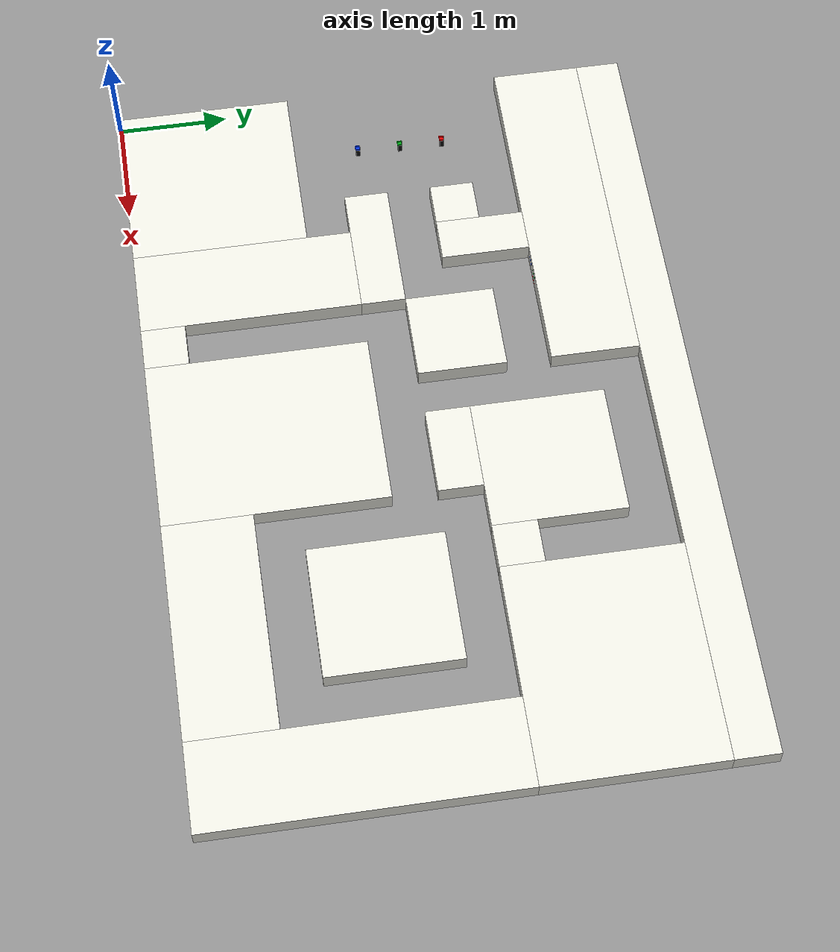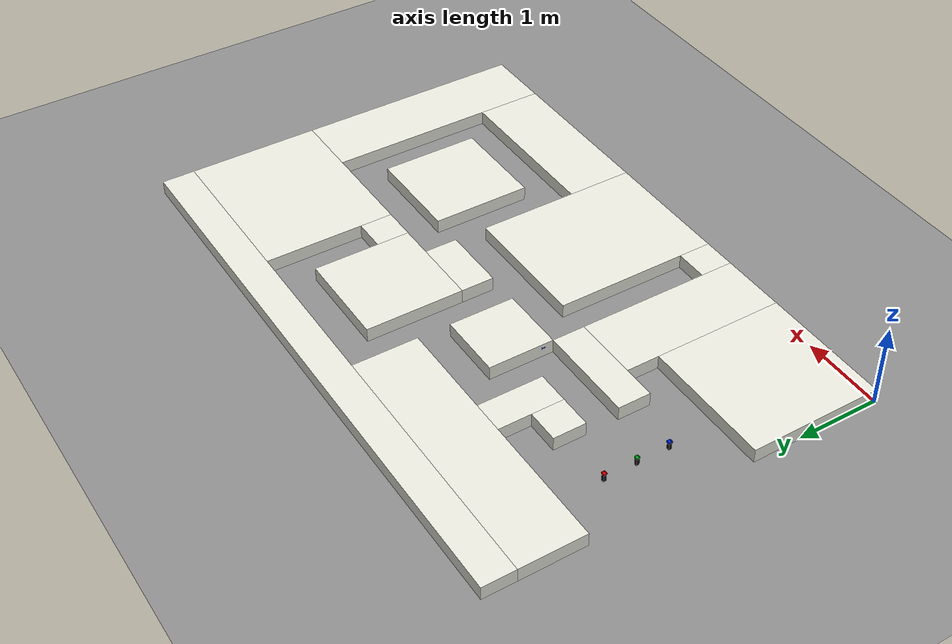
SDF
<sdf version="1.9">
 <world name="ros2_world">
  <model name="ground_plane">
   <static>true</static>
   <link name="link">
    <collision name="collision">
     <geometry><plane><normal>0 0 1</normal><size>30 30</size></plane></geometry>
    </collision>
    <visual name="visual">
     <geometry><plane><normal>0 0 1</normal><size>30 30</size></plane></geometry>
     <material><ambient>0.55 0.55 0.55 1</ambient><diffuse>0.55 0.55 0.55 1</diffuse></material>
    </visual>
   </link>
  </model>
  <model name="paredes">
   <static>true</static>
   <link name="bloque_0">
    <pose>3.6 4.6 0.085 0 0 0</pose>
    <collision name="colision"><geometry><box><size>7.2 0.4 0.17</size></box></geometry></collision>
    <visual name="visual">
     <geometry><box><size>7.2 0.4 0.17</size></box></geometry>
     <material><ambient>0.9 0.9 0.86 1</ambient><diffuse>0.9 0.9 0.86 1</diffuse></material>
    </visual>
   </link>
   <link name="bloque_1">
    <pose>1.6 4 0.085 0 0 0</pose>
    <collision name="colision"><geometry><box><size>3.2 0.8 0.17</size></box></geometry></collision>
    <visual name="visual">
     <geometry><box><size>3.2 0.8 0.17</size></box></geometry>
     <material><ambient>0.9 0.9 0.86 1</ambient><diffuse>0.9 0.9 0.86 1</diffuse></material>
    </visual>
   </link>
   <link name="bloque_2">
    <pose>6.2 3.6 0.085 0 0 0</pose>
    <collision name="colision"><geometry><box><size>2 1.6 0.17</size></box></geometry></collision>
    <visual name="visual">
     <geometry><box><size>2 1.6 0.17</size></box></geometry>
     <material><ambient>0.9 0.9 0.86 1</ambient><diffuse>0.9 0.9 0.86 1</diffuse></material>
    </visual>
   </link>
   <link name="bloque_3">
    <pose>4.2 3.4 0.085 0 0 0</pose>
    <collision name="colision"><geometry><box><size>1.2 1.2 0.17</size></box></geometry></collision>
    <visual name="visual">
     <geometry><box><size>1.2 1.2 0.17</size></box></geometry>
     <material><ambient>0.9 0.9 0.86 1</ambient><diffuse>0.9 0.9 0.86 1</diffuse></material>
    </visual>
   </link>
   <link name="bloque_4">
    <pose>1.8 3.2 0.085 0 0 0</pose>
    <collision name="colision"><geometry><box><size>0.4 0.8 0.17</size></box></geometry></collision>
    <visual name="visual">
     <geometry><box><size>0.4 0.8 0.17</size></box></geometry>
     <material><ambient>0.9 0.9 0.86 1</ambient><diffuse>0.9 0.9 0.86 1</diffuse></material>
    </visual>
   </link>
   <link name="bloque_5">
    <pose>1.4 3 0.085 0 0 0</pose>
    <collision name="colision"><geometry><box><size>0.4 0.4 0.17</size></box></geometry></collision>
    <visual name="visual">
     <geometry><box><size>0.4 0.4 0.17</size></box></geometry>
     <material><ambient>0.9 0.9 0.86 1</ambient><diffuse>0.9 0.9 0.86 1</diffuse></material>
    </visual>
   </link>
   <link name="bloque_6">
    <pose>2.8 2.8 0.085 0 0 0</pose>
    <collision name="colision"><geometry><box><size>0.8 0.8 0.17</size></box></geometry></collision>
    <visual name="visual">
     <geometry><box><size>0.8 0.8 0.17</size></box></geometry>
     <material><ambient>0.9 0.9 0.86 1</ambient><diffuse>0.9 0.9 0.86 1</diffuse></material>
    </visual>
   </link>
   <link name="bloque_7">
    <pose>5 3 0.085 0 0 0</pose>
    <collision name="colision"><geometry><box><size>0.4 0.4 0.17</size></box></geometry></collision>
    <visual name="visual">
     <geometry><box><size>0.4 0.4 0.17</size></box></geometry>
     <material><ambient>0.9 0.9 0.86 1</ambient><diffuse>0.9 0.9 0.86 1</diffuse></material>
    </visual>
   </link>
   <link name="bloque_8">
    <pose>4 2.6 0.085 0 0 0</pose>
    <collision name="colision"><geometry><box><size>0.8 0.4 0.17</size></box></geometry></collision>
    <visual name="visual">
     <geometry><box><size>0.8 0.4 0.17</size></box></geometry>
     <material><ambient>0.9 0.9 0.86 1</ambient><diffuse>0.9 0.9 0.86 1</diffuse></material>
    </visual>
   </link>
   <link name="bloque_9">
    <pose>6.8 1.4 0.085 0 0 0</pose>
    <collision name="colision"><geometry><box><size>0.8 2.8 0.17</size></box></geometry></collision>
    <visual name="visual">
     <geometry><box><size>0.8 2.8 0.17</size></box></geometry>
     <material><ambient>0.9 0.9 0.86 1</ambient><diffuse>0.9 0.9 0.86 1</diffuse></material>
    </visual>
   </link>
   <link name="bloque_10">
    <pose>1.8 2.2 0.085 0 0 0</pose>
    <collision name="colision"><geometry><box><size>1.2 0.4 0.17</size></box></geometry></collision>
    <visual name="visual">
     <geometry><box><size>1.2 0.4 0.17</size></box></geometry>
     <material><ambient>0.9 0.9 0.86 1</ambient><diffuse>0.9 0.9 0.86 1</diffuse></material>
    </visual>
   </link>
   <link name="bloque_11">
    <pose>5.4 1.8 0.085 0 0 0</pose>
    <collision name="colision"><geometry><box><size>1.2 1.2 0.17</size></box></geometry></collision>
    <visual name="visual">
     <geometry><box><size>1.2 1.2 0.17</size></box></geometry>
     <material><ambient>0.9 0.9 0.86 1</ambient><diffuse>0.9 0.9 0.86 1</diffuse></material>
    </visual>
   </link>
   <link name="bloque_12">
    <pose>2 1 0.085 0 0 0</pose>
    <collision name="colision"><geometry><box><size>0.8 2 0.17</size></box></geometry></collision>
    <visual name="visual">
     <geometry><box><size>0.8 2 0.17</size></box></geometry>
     <material><ambient>0.9 0.9 0.86 1</ambient><diffuse>0.9 0.9 0.86 1</diffuse></material>
    </visual>
   </link>
   <link name="bloque_13">
    <pose>3.6 1 0.085 0 0 0</pose>
    <collision name="colision"><geometry><box><size>1.6 2 0.17</size></box></geometry></collision>
    <visual name="visual">
     <geometry><box><size>1.6 2 0.17</size></box></geometry>
     <material><ambient>0.9 0.9 0.86 1</ambient><diffuse>0.9 0.9 0.86 1</diffuse></material>
    </visual>
   </link>
   <link name="bloque_14">
    <pose>0.8 0.8 0.085 0 0 0</pose>
    <collision name="colision"><geometry><box><size>1.6 1.6 0.17</size></box></geometry></collision>
    <visual name="visual">
     <geometry><box><size>1.6 1.6 0.17</size></box></geometry>
     <material><ambient>0.9 0.9 0.86 1</ambient><diffuse>0.9 0.9 0.86 1</diffuse></material>
    </visual>
   </link>
   <link name="bloque_15">
    <pose>5.4 0.4 0.085 0 0 0</pose>
    <collision name="colision"><geometry><box><size>2 0.8 0.17</size></box></geometry></collision>
    <visual name="visual">
     <geometry><box><size>2 0.8 0.17</size></box></geometry>
     <material><ambient>0.9 0.9 0.86 1</ambient><diffuse>0.9 0.9 0.86 1</diffuse></material>
    </visual>
   </link>
   <link name="bloque_16">
    <pose>2.6 0.2 0.085 0 0 0</pose>
    <collision name="colision"><geometry><box><size>0.4 0.4 0.17</size></box></geometry></collision>
    <visual name="visual">
     <geometry><box><size>0.4 0.4 0.17</size></box></geometry>
     <material><ambient>0.9 0.9 0.86 1</ambient><diffuse>0.9 0.9 0.86 1</diffuse></material>
    </visual>
   </link>
  </model>
  <model name="flechas">
   <static>true</static>
   <link name="flecha_2">
    <pose>2.12 3.59875 0.115 0 0 0</pose>
    <visual name="p0">
     <pose>-0.007 0 0 0 0 0</pose>
     <geometry><box><size>0.085 0.0015 0.01</size></box></geometry>
     <material><ambient>0 0.2 1 1</ambient><diffuse>0 0.2 1 1</diffuse></material>
    </visual>
    <visual name="p1">
     <pose>0.03578 0 0 0 0 0</pose>
     <geometry><box><size>0.00056 0.0015 0.029</size></box></geometry>
     <material><ambient>0 0.2 1 1</ambient><diffuse>0 0.2 1 1</diffuse></material>
    </visual>
    <visual name="p2">
     <pose>0.03634 0 0 0 0 0</pose>
     <geometry><box><size>0.00056 0.0015 0.02784</size></box></geometry>
     <material><ambient>0 0.2 1 1</ambient><diffuse>0 0.2 1 1</diffuse></material>
    </visual>
    <visual name="p3">
     <pose>0.0369 0 0 0 0 0</pose>
     <geometry><box><size>0.00056 0.0015 0.02668</size></box></geometry>
     <material><ambient>0 0.2 1 1</ambient><diffuse>0 0.2 1 1</diffuse></material>
    </visual>
    <visual name="p4">
     <pose>0.03746 0 0 0 0 0</pose>
     <geometry><box><size>0.00056 0.0015 0.02552</size></box></geometry>
     <material><ambient>0 0.2 1 1</ambient><diffuse>0 0.2 1 1</diffuse></material>
    </visual>
    <visual name="p5">
     <pose>0.03802 0 0 0 0 0</pose>
     <geometry><box><size>0.00056 0.0015 0.02436</size></box></geometry>
     <material><ambient>0 0.2 1 1</ambient><diffuse>0 0.2 1 1</diffuse></material>
    </visual>
    <visual name="p6">
     <pose>0.03858 0 0 0 0 0</pose>
     <geometry><box><size>0.00056 0.0015 0.0232</size></box></geometry>
     <material><ambient>0 0.2 1 1</ambient><diffuse>0 0.2 1 1</diffuse></material>
    </visual>
    <visual name="p7">
     <pose>0.03914 0 0 0 0 0</pose>
     <geometry><box><size>0.00056 0.0015 0.02204</size></box></geometry>
     <material><ambient>0 0.2 1 1</ambient><diffuse>0 0.2 1 1</diffuse></material>
    </visual>
    <visual name="p8">
     <pose>0.0397 0 0 0 0 0</pose>
     <geometry><box><size>0.00056 0.0015 0.02088</size></box></geometry>
     <material><ambient>0 0.2 1 1</ambient><diffuse>0 0.2 1 1</diffuse></material>
    </visual>
    <visual name="p9">
     <pose>0.04026 0 0 0 0 0</pose>
     <geometry><box><size>0.00056 0.0015 0.01972</size></box></geometry>
     <material><ambient>0 0.2 1 1</ambient><diffuse>0 0.2 1 1</diffuse></material>
    </visual>
    <visual name="p10">
     <pose>0.04082 0 0 0 0 0</pose>
     <geometry><box><size>0.00056 0.0015 0.01856</size></box></geometry>
     <material><ambient>0 0.2 1 1</ambient><diffuse>0 0.2 1 1</diffuse></material>
    </visual>
    <visual name="p11">
     <pose>0.04138 0 0 0 0 0</pose>
     <geometry><box><size>0.00056 0.0015 0.0174</size></box></geometry>
     <material><ambient>0 0.2 1 1</ambient><diffuse>0 0.2 1 1</diffuse></material>
    </visual>
    <visual name="p12">
     <pose>0.04194 0 0 0 0 0</pose>
     <geometry><box><size>0.00056 0.0015 0.01624</size></box></geometry>
     <material><ambient>0 0.2 1 1</ambient><diffuse>0 0.2 1 1</diffuse></material>
    </visual>
    <visual name="p13">
     <pose>0.0425 0 0 0 0 0</pose>
     <geometry><box><size>0.00056 0.0015 0.01508</size></box></geometry>
     <material><ambient>0 0.2 1 1</ambient><diffuse>0 0.2 1 1</diffuse></material>
    </visual>
    <visual name="p14">
     <pose>0.04306 0 0 0 0 0</pose>
     <geometry><box><size>0.00056 0.0015 0.01392</size></box></geometry>
     <material><ambient>0 0.2 1 1</ambient><diffuse>0 0.2 1 1</diffuse></material>
    </visual>
    <visual name="p15">
     <pose>0.04362 0 0 0 0 0</pose>
     <geometry><box><size>0.00056 0.0015 0.01276</size></box></geometry>
     <material><ambient>0 0.2 1 1</ambient><diffuse>0 0.2 1 1</diffuse></material>
    </visual>
    <visual name="p16">
     <pose>0.04418 0 0 0 0 0</pose>
     <geometry><box><size>0.00056 0.0015 0.0116</size></box></geometry>
     <material><ambient>0 0.2 1 1</ambient><diffuse>0 0.2 1 1</diffuse></material>
    </visual>
    <visual name="p17">
     <pose>0.04474 0 0 0 0 0</pose>
     <geometry><box><size>0.00056 0.0015 0.01044</size></box></geometry>
     <material><ambient>0 0.2 1 1</ambient><diffuse>0 0.2 1 1</diffuse></material>
    </visual>
    <visual name="p18">
     <pose>0.0453 0 0 0 0 0</pose>
     <geometry><box><size>0.00056 0.0015 0.00928</size></box></geometry>
     <material><ambient>0 0.2 1 1</ambient><diffuse>0 0.2 1 1</diffuse></material>
    </visual>
    <visual name="p19">
     <pose>0.04586 0 0 0 0 0</pose>
     <geometry><box><size>0.00056 0.0015 0.00812</size></box></geometry>
     <material><ambient>0 0.2 1 1</ambient><diffuse>0 0.2 1 1</diffuse></material>
    </visual>
    <visual name="p20">
     <pose>0.04642 0 0 0 0 0</pose>
     <geometry><box><size>0.00056 0.0015 0.00696</size></box></geometry>
     <material><ambient>0 0.2 1 1</ambient><diffuse>0 0.2 1 1</diffuse></material>
    </visual>
    <visual name="p21">
     <pose>0.04698 0 0 0 0 0</pose>
     <geometry><box><size>0.00056 0.0015 0.0058</size></box></geometry>
     <material><ambient>0 0.2 1 1</ambient><diffuse>0 0.2 1 1</diffuse></material>
    </visual>
    <visual name="p22">
     <pose>0.04754 0 0 0 0 0</pose>
     <geometry><box><size>0.00056 0.0015 0.00464</size></box></geometry>
     <material><ambient>0 0.2 1 1</ambient><diffuse>0 0.2 1 1</diffuse></material>
    </visual>
    <visual name="p23">
     <pose>0.0481 0 0 0 0 0</pose>
     <geometry><box><size>0.00056 0.0015 0.00348</size></box></geometry>
     <material><ambient>0 0.2 1 1</ambient><diffuse>0 0.2 1 1</diffuse></material>
    </visual>
    <visual name="p24">
     <pose>0.04866 0 0 0 0 0</pose>
     <geometry><box><size>0.00056 0.0015 0.00232</size></box></geometry>
     <material><ambient>0 0.2 1 1</ambient><diffuse>0 0.2 1 1</diffuse></material>
    </visual>
    <visual name="p25">
     <pose>0.04922 0 0 0 0 0</pose>
     <geometry><box><size>0.00056 0.0015 0.00116</size></box></geometry>
     <material><ambient>0 0.2 1 1</ambient><diffuse>0 0.2 1 1</diffuse></material>
    </visual>
   </link>
   <link name="flecha_3">
    <pose>2.28 3.59875 0.125 0 0 0</pose>
    <visual name="p0">
     <pose>-0.007 0 0 0 0 0</pose>
     <geometry><box><size>0.085 0.0015 0.01</size></box></geometry>
     <material><ambient>0 0.7 0.1 1</ambient><diffuse>0 0.7 0.1 1</diffuse></material>
    </visual>
    <visual name="p1">
     <pose>0.03578 0 0 0 0 0</pose>
     <geometry><box><size>0.00056 0.0015 0.029</size></box></geometry>
     <material><ambient>0 0.7 0.1 1</ambient><diffuse>0 0.7 0.1 1</diffuse></material>
    </visual>
    <visual name="p2">
     <pose>0.03634 0 0 0 0 0</pose>
     <geometry><box><size>0.00056 0.0015 0.02784</size></box></geometry>
     <material><ambient>0 0.7 0.1 1</ambient><diffuse>0 0.7 0.1 1</diffuse></material>
    </visual>
    <visual name="p3">
     <pose>0.0369 0 0 0 0 0</pose>
     <geometry><box><size>0.00056 0.0015 0.02668</size></box></geometry>
     <material><ambient>0 0.7 0.1 1</ambient><diffuse>0 0.7 0.1 1</diffuse></material>
    </visual>
    <visual name="p4">
     <pose>0.03746 0 0 0 0 0</pose>
     <geometry><box><size>0.00056 0.0015 0.02552</size></box></geometry>
     <material><ambient>0 0.7 0.1 1</ambient><diffuse>0 0.7 0.1 1</diffuse></material>
    </visual>
    <visual name="p5">
     <pose>0.03802 0 0 0 0 0</pose>
     <geometry><box><size>0.00056 0.0015 0.02436</size></box></geometry>
     <material><ambient>0 0.7 0.1 1</ambient><diffuse>0 0.7 0.1 1</diffuse></material>
    </visual>
    <visual name="p6">
     <pose>0.03858 0 0 0 0 0</pose>
     <geometry><box><size>0.00056 0.0015 0.0232</size></box></geometry>
     <material><ambient>0 0.7 0.1 1</ambient><diffuse>0 0.7 0.1 1</diffuse></material>
    </visual>
    <visual name="p7">
     <pose>0.03914 0 0 0 0 0</pose>
     <geometry><box><size>0.00056 0.0015 0.02204</size></box></geometry>
     <material><ambient>0 0.7 0.1 1</ambient><diffuse>0 0.7 0.1 1</diffuse></material>
    </visual>
    <visual name="p8">
     <pose>0.0397 0 0 0 0 0</pose>
     <geometry><box><size>0.00056 0.0015 0.02088</size></box></geometry>
     <material><ambient>0 0.7 0.1 1</ambient><diffuse>0 0.7 0.1 1</diffuse></material>
    </visual>
    <visual name="p9">
     <pose>0.04026 0 0 0 0 0</pose>
     <geometry><box><size>0.00056 0.0015 0.01972</size></box></geometry>
     <material><ambient>0 0.7 0.1 1</ambient><diffuse>0 0.7 0.1 1</diffuse></material>
    </visual>
    <visual name="p10">
     <pose>0.04082 0 0 0 0 0</pose>
     <geometry><box><size>0.00056 0.0015 0.01856</size></box></geometry>
     <material><ambient>0 0.7 0.1 1</ambient><diffuse>0 0.7 0.1 1</diffuse></material>
    </visual>
    <visual name="p11">
     <pose>0.04138 0 0 0 0 0</pose>
     <geometry><box><size>0.00056 0.0015 0.0174</size></box></geometry>
     <material><ambient>0 0.7 0.1 1</ambient><diffuse>0 0.7 0.1 1</diffuse></material>
    </visual>
    <visual name="p12">
     <pose>0.04194 0 0 0 0 0</pose>
     <geometry><box><size>0.00056 0.0015 0.01624</size></box></geometry>
     <material><ambient>0 0.7 0.1 1</ambient><diffuse>0 0.7 0.1 1</diffuse></material>
    </visual>
    <visual name="p13">
     <pose>0.0425 0 0 0 0 0</pose>
     <geometry><box><size>0.00056 0.0015 0.01508</size></box></geometry>
     <material><ambient>0 0.7 0.1 1</ambient><diffuse>0 0.7 0.1 1</diffuse></material>
    </visual>
    <visual name="p14">
     <pose>0.04306 0 0 0 0 0</pose>
     <geometry><box><size>0.00056 0.0015 0.01392</size></box></geometry>
     <material><ambient>0 0.7 0.1 1</ambient><diffuse>0 0.7 0.1 1</diffuse></material>
    </visual>
    <visual name="p15">
     <pose>0.04362 0 0 0 0 0</pose>
     <geometry><box><size>0.00056 0.0015 0.01276</size></box></geometry>
     <material><ambient>0 0.7 0.1 1</ambient><diffuse>0 0.7 0.1 1</diffuse></material>
    </visual>
    <visual name="p16">
     <pose>0.04418 0 0 0 0 0</pose>
     <geometry><box><size>0.00056 0.0015 0.0116</size></box></geometry>
     <material><ambient>0 0.7 0.1 1</ambient><diffuse>0 0.7 0.1 1</diffuse></material>
    </visual>
    <visual name="p17">
     <pose>0.04474 0 0 0 0 0</pose>
     <geometry><box><size>0.00056 0.0015 0.01044</size></box></geometry>
     <material><ambient>0 0.7 0.1 1</ambient><diffuse>0 0.7 0.1 1</diffuse></material>
    </visual>
    <visual name="p18">
     <pose>0.0453 0 0 0 0 0</pose>
     <geometry><box><size>0.00056 0.0015 0.00928</size></box></geometry>
     <material><ambient>0 0.7 0.1 1</ambient><diffuse>0 0.7 0.1 1</diffuse></material>
    </visual>
    <visual name="p19">
     <pose>0.04586 0 0 0 0 0</pose>
     <geometry><box><size>0.00056 0.0015 0.00812</size></box></geometry>
     <material><ambient>0 0.7 0.1 1</ambient><diffuse>0 0.7 0.1 1</diffuse></material>
    </visual>
    <visual name="p20">
     <pose>0.04642 0 0 0 0 0</pose>
     <geometry><box><size>0.00056 0.0015 0.00696</size></box></geometry>
     <material><ambient>0 0.7 0.1 1</ambient><diffuse>0 0.7 0.1 1</diffuse></material>
    </visual>
    <visual name="p21">
     <pose>0.04698 0 0 0 0 0</pose>
     <geometry><box><size>0.00056 0.0015 0.0058</size></box></geometry>
     <material><ambient>0 0.7 0.1 1</ambient><diffuse>0 0.7 0.1 1</diffuse></material>
    </visual>
    <visual name="p22">
     <pose>0.04754 0 0 0 0 0</pose>
     <geometry><box><size>0.00056 0.0015 0.00464</size></box></geometry>
     <material><ambient>0 0.7 0.1 1</ambient><diffuse>0 0.7 0.1 1</diffuse></material>
    </visual>
    <visual name="p23">
     <pose>0.0481 0 0 0 0 0</pose>
     <geometry><box><size>0.00056 0.0015 0.00348</size></box></geometry>
     <material><ambient>0 0.7 0.1 1</ambient><diffuse>0 0.7 0.1 1</diffuse></material>
    </visual>
    <visual name="p24">
     <pose>0.04866 0 0 0 0 0</pose>
     <geometry><box><size>0.00056 0.0015 0.00232</size></box></geometry>
     <material><ambient>0 0.7 0.1 1</ambient><diffuse>0 0.7 0.1 1</diffuse></material>
    </visual>
    <visual name="p25">
     <pose>0.04922 0 0 0 0 0</pose>
     <geometry><box><size>0.00056 0.0015 0.00116</size></box></geometry>
     <material><ambient>0 0.7 0.1 1</ambient><diffuse>0 0.7 0.1 1</diffuse></material>
    </visual>
   </link>
   <link name="flecha_4">
    <pose>2.28 3.59875 0.045 0 0 0</pose>
    <visual name="p0">
     <pose>-0.007 0 0 0 0 0</pose>
     <geometry><box><size>0.085 0.0015 0.01</size></box></geometry>
     <material><ambient>1 0 0 1</ambient><diffuse>1 0 0 1</diffuse></material>
    </visual>
    <visual name="p1">
     <pose>0.03578 0 0 0 0 0</pose>
     <geometry><box><size>0.00056 0.0015 0.029</size></box></geometry>
     <material><ambient>1 0 0 1</ambient><diffuse>1 0 0 1</diffuse></material>
    </visual>
    <visual name="p2">
     <pose>0.03634 0 0 0 0 0</pose>
     <geometry><box><size>0.00056 0.0015 0.02784</size></box></geometry>
     <material><ambient>1 0 0 1</ambient><diffuse>1 0 0 1</diffuse></material>
    </visual>
    <visual name="p3">
     <pose>0.0369 0 0 0 0 0</pose>
     <geometry><box><size>0.00056 0.0015 0.02668</size></box></geometry>
     <material><ambient>1 0 0 1</ambient><diffuse>1 0 0 1</diffuse></material>
    </visual>
    <visual name="p4">
     <pose>0.03746 0 0 0 0 0</pose>
     <geometry><box><size>0.00056 0.0015 0.02552</size></box></geometry>
     <material><ambient>1 0 0 1</ambient><diffuse>1 0 0 1</diffuse></material>
    </visual>
    <visual name="p5">
     <pose>0.03802 0 0 0 0 0</pose>
     <geometry><box><size>0.00056 0.0015 0.02436</size></box></geometry>
     <material><ambient>1 0 0 1</ambient><diffuse>1 0 0 1</diffuse></material>
    </visual>
    <visual name="p6">
     <pose>0.03858 0 0 0 0 0</pose>
     <geometry><box><size>0.00056 0.0015 0.0232</size></box></geometry>
     <material><ambient>1 0 0 1</ambient><diffuse>1 0 0 1</diffuse></material>
    </visual>
    <visual name="p7">
     <pose>0.03914 0 0 0 0 0</pose>
     <geometry><box><size>0.00056 0.0015 0.02204</size></box></geometry>
     <material><ambient>1 0 0 1</ambient><diffuse>1 0 0 1</diffuse></material>
    </visual>
    <visual name="p8">
     <pose>0.0397 0 0 0 0 0</pose>
     <geometry><box><size>0.00056 0.0015 0.02088</size></box></geometry>
     <material><ambient>1 0 0 1</ambient><diffuse>1 0 0 1</diffuse></material>
    </visual>
    <visual name="p9">
     <pose>0.04026 0 0 0 0 0</pose>
     <geometry><box><size>0.00056 0.0015 0.01972</size></box></geometry>
     <material><ambient>1 0 0 1</ambient><diffuse>1 0 0 1</diffuse></material>
    </visual>
    <visual name="p10">
     <pose>0.04082 0 0 0 0 0</pose>
     <geometry><box><size>0.00056 0.0015 0.01856</size></box></geometry>
     <material><ambient>1 0 0 1</ambient><diffuse>1 0 0 1</diffuse></material>
    </visual>
    <visual name="p11">
     <pose>0.04138 0 0 0 0 0</pose>
     <geometry><box><size>0.00056 0.0015 0.0174</size></box></geometry>
     <material><ambient>1 0 0 1</ambient><diffuse>1 0 0 1</diffuse></material>
    </visual>
    <visual name="p12">
     <pose>0.04194 0 0 0 0 0</pose>
     <geometry><box><size>0.00056 0.0015 0.01624</size></box></geometry>
     <material><ambient>1 0 0 1</ambient><diffuse>1 0 0 1</diffuse></material>
    </visual>
    <visual name="p13">
     <pose>0.0425 0 0 0 0 0</pose>
     <geometry><box><size>0.00056 0.0015 0.01508</size></box></geometry>
     <material><ambient>1 0 0 1</ambient><diffuse>1 0 0 1</diffuse></material>
    </visual>
    <visual name="p14">
     <pose>0.04306 0 0 0 0 0</pose>
     <geometry><box><size>0.00056 0.0015 0.01392</size></box></geometry>
     <material><ambient>1 0 0 1</ambient><diffuse>1 0 0 1</diffuse></material>
    </visual>
    <visual name="p15">
     <pose>0.04362 0 0 0 0 0</pose>
     <geometry><box><size>0.00056 0.0015 0.01276</size></box></geometry>
     <material><ambient>1 0 0 1</ambient><diffuse>1 0 0 1</diffuse></material>
    </visual>
    <visual name="p16">
     <pose>0.04418 0 0 0 0 0</pose>
     <geometry><box><size>0.00056 0.0015 0.0116</size></box></geometry>
     <material><ambient>1 0 0 1</ambient><diffuse>1 0 0 1</diffuse></material>
    </visual>
    <visual name="p17">
     <pose>0.04474 0 0 0 0 0</pose>
     <geometry><box><size>0.00056 0.0015 0.01044</size></box></geometry>
     <material><ambient>1 0 0 1</ambient><diffuse>1 0 0 1</diffuse></material>
    </visual>
    <visual name="p18">
     <pose>0.0453 0 0 0 0 0</pose>
     <geometry><box><size>0.00056 0.0015 0.00928</size></box></geometry>
     <material><ambient>1 0 0 1</ambient><diffuse>1 0 0 1</diffuse></material>
    </visual>
    <visual name="p19">
     <pose>0.04586 0 0 0 0 0</pose>
     <geometry><box><size>0.00056 0.0015 0.00812</size></box></geometry>
     <material><ambient>1 0 0 1</ambient><diffuse>1 0 0 1</diffuse></material>
    </visual>
    <visual name="p20">
     <pose>0.04642 0 0 0 0 0</pose>
     <geometry><box><size>0.00056 0.0015 0.00696</size></box></geometry>
     <material><ambient>1 0 0 1</ambient><diffuse>1 0 0 1</diffuse></material>
    </visual>
    <visual name="p21">
     <pose>0.04698 0 0 0 0 0</pose>
     <geometry><box><size>0.00056 0.0015 0.0058</size></box></geometry>
     <material><ambient>1 0 0 1</ambient><diffuse>1 0 0 1</diffuse></material>
    </visual>
    <visual name="p22">
     <pose>0.04754 0 0 0 0 0</pose>
     <geometry><box><size>0.00056 0.0015 0.00464</size></box></geometry>
     <material><ambient>1 0 0 1</ambient><diffuse>1 0 0 1</diffuse></material>
    </visual>
    <visual name="p23">
     <pose>0.0481 0 0 0 0 0</pose>
     <geometry><box><size>0.00056 0.0015 0.00348</size></box></geometry>
     <material><ambient>1 0 0 1</ambient><diffuse>1 0 0 1</diffuse></material>
    </visual>
    <visual name="p24">
     <pose>0.04866 0 0 0 0 0</pose>
     <geometry><box><size>0.00056 0.0015 0.00232</size></box></geometry>
     <material><ambient>1 0 0 1</ambient><diffuse>1 0 0 1</diffuse></material>
    </visual>
    <visual name="p25">
     <pose>0.04922 0 0 0 0 0</pose>
     <geometry><box><size>0.00056 0.0015 0.00116</size></box></geometry>
     <material><ambient>1 0 0 1</ambient><diffuse>1 0 0 1</diffuse></material>
    </visual>
   </link>
   <link name="flecha_8">
    <pose>2.39875 2.52 0.115 0 0 1.5708</pose>
    <visual name="p0">
     <pose>-0.0065 0 0 0 0 0</pose>
     <geometry><box><size>0.047 0.0015 0.01</size></box></geometry>
     <material><ambient>0 0.2 1 1</ambient><diffuse>0 0.2 1 1</diffuse></material>
    </visual>
    <visual name="p1">
     <pose>0.01726 0 0 0 0 0</pose>
     <geometry><box><size>0.00052 0.0015 0.029</size></box></geometry>
     <material><ambient>0 0.2 1 1</ambient><diffuse>0 0.2 1 1</diffuse></material>
    </visual>
    <visual name="p2">
     <pose>0.01778 0 0 0 0 0</pose>
     <geometry><box><size>0.00052 0.0015 0.02784</size></box></geometry>
     <material><ambient>0 0.2 1 1</ambient><diffuse>0 0.2 1 1</diffuse></material>
    </visual>
    <visual name="p3">
     <pose>0.0183 0 0 0 0 0</pose>
     <geometry><box><size>0.00052 0.0015 0.02668</size></box></geometry>
     <material><ambient>0 0.2 1 1</ambient><diffuse>0 0.2 1 1</diffuse></material>
    </visual>
    <visual name="p4">
     <pose>0.01882 0 0 0 0 0</pose>
     <geometry><box><size>0.00052 0.0015 0.02552</size></box></geometry>
     <material><ambient>0 0.2 1 1</ambient><diffuse>0 0.2 1 1</diffuse></material>
    </visual>
    <visual name="p5">
     <pose>0.01934 0 0 0 0 0</pose>
     <geometry><box><size>0.00052 0.0015 0.02436</size></box></geometry>
     <material><ambient>0 0.2 1 1</ambient><diffuse>0 0.2 1 1</diffuse></material>
    </visual>
    <visual name="p6">
     <pose>0.01986 0 0 0 0 0</pose>
     <geometry><box><size>0.00052 0.0015 0.0232</size></box></geometry>
     <material><ambient>0 0.2 1 1</ambient><diffuse>0 0.2 1 1</diffuse></material>
    </visual>
    <visual name="p7">
     <pose>0.02038 0 0 0 0 0</pose>
     <geometry><box><size>0.00052 0.0015 0.02204</size></box></geometry>
     <material><ambient>0 0.2 1 1</ambient><diffuse>0 0.2 1 1</diffuse></material>
    </visual>
    <visual name="p8">
     <pose>0.0209 0 0 0 0 0</pose>
     <geometry><box><size>0.00052 0.0015 0.02088</size></box></geometry>
     <material><ambient>0 0.2 1 1</ambient><diffuse>0 0.2 1 1</diffuse></material>
    </visual>
    <visual name="p9">
     <pose>0.02142 0 0 0 0 0</pose>
     <geometry><box><size>0.00052 0.0015 0.01972</size></box></geometry>
     <material><ambient>0 0.2 1 1</ambient><diffuse>0 0.2 1 1</diffuse></material>
    </visual>
    <visual name="p10">
     <pose>0.02194 0 0 0 0 0</pose>
     <geometry><box><size>0.00052 0.0015 0.01856</size></box></geometry>
     <material><ambient>0 0.2 1 1</ambient><diffuse>0 0.2 1 1</diffuse></material>
    </visual>
    <visual name="p11">
     <pose>0.02246 0 0 0 0 0</pose>
     <geometry><box><size>0.00052 0.0015 0.0174</size></box></geometry>
     <material><ambient>0 0.2 1 1</ambient><diffuse>0 0.2 1 1</diffuse></material>
    </visual>
    <visual name="p12">
     <pose>0.02298 0 0 0 0 0</pose>
     <geometry><box><size>0.00052 0.0015 0.01624</size></box></geometry>
     <material><ambient>0 0.2 1 1</ambient><diffuse>0 0.2 1 1</diffuse></material>
    </visual>
    <visual name="p13">
     <pose>0.0235 0 0 0 0 0</pose>
     <geometry><box><size>0.00052 0.0015 0.01508</size></box></geometry>
     <material><ambient>0 0.2 1 1</ambient><diffuse>0 0.2 1 1</diffuse></material>
    </visual>
    <visual name="p14">
     <pose>0.02402 0 0 0 0 0</pose>
     <geometry><box><size>0.00052 0.0015 0.01392</size></box></geometry>
     <material><ambient>0 0.2 1 1</ambient><diffuse>0 0.2 1 1</diffuse></material>
    </visual>
    <visual name="p15">
     <pose>0.02454 0 0 0 0 0</pose>
     <geometry><box><size>0.00052 0.0015 0.01276</size></box></geometry>
     <material><ambient>0 0.2 1 1</ambient><diffuse>0 0.2 1 1</diffuse></material>
    </visual>
    <visual name="p16">
     <pose>0.02506 0 0 0 0 0</pose>
     <geometry><box><size>0.00052 0.0015 0.0116</size></box></geometry>
     <material><ambient>0 0.2 1 1</ambient><diffuse>0 0.2 1 1</diffuse></material>
    </visual>
    <visual name="p17">
     <pose>0.02558 0 0 0 0 0</pose>
     <geometry><box><size>0.00052 0.0015 0.01044</size></box></geometry>
     <material><ambient>0 0.2 1 1</ambient><diffuse>0 0.2 1 1</diffuse></material>
    </visual>
    <visual name="p18">
     <pose>0.0261 0 0 0 0 0</pose>
     <geometry><box><size>0.00052 0.0015 0.00928</size></box></geometry>
     <material><ambient>0 0.2 1 1</ambient><diffuse>0 0.2 1 1</diffuse></material>
    </visual>
    <visual name="p19">
     <pose>0.02662 0 0 0 0 0</pose>
     <geometry><box><size>0.00052 0.0015 0.00812</size></box></geometry>
     <material><ambient>0 0.2 1 1</ambient><diffuse>0 0.2 1 1</diffuse></material>
    </visual>
    <visual name="p20">
     <pose>0.02714 0 0 0 0 0</pose>
     <geometry><box><size>0.00052 0.0015 0.00696</size></box></geometry>
     <material><ambient>0 0.2 1 1</ambient><diffuse>0 0.2 1 1</diffuse></material>
    </visual>
    <visual name="p21">
     <pose>0.02766 0 0 0 0 0</pose>
     <geometry><box><size>0.00052 0.0015 0.0058</size></box></geometry>
     <material><ambient>0 0.2 1 1</ambient><diffuse>0 0.2 1 1</diffuse></material>
    </visual>
    <visual name="p22">
     <pose>0.02818 0 0 0 0 0</pose>
     <geometry><box><size>0.00052 0.0015 0.00464</size></box></geometry>
     <material><ambient>0 0.2 1 1</ambient><diffuse>0 0.2 1 1</diffuse></material>
    </visual>
    <visual name="p23">
     <pose>0.0287 0 0 0 0 0</pose>
     <geometry><box><size>0.00052 0.0015 0.00348</size></box></geometry>
     <material><ambient>0 0.2 1 1</ambient><diffuse>0 0.2 1 1</diffuse></material>
    </visual>
    <visual name="p24">
     <pose>0.02922 0 0 0 0 0</pose>
     <geometry><box><size>0.00052 0.0015 0.00232</size></box></geometry>
     <material><ambient>0 0.2 1 1</ambient><diffuse>0 0.2 1 1</diffuse></material>
    </visual>
    <visual name="p25">
     <pose>0.02974 0 0 0 0 0</pose>
     <geometry><box><size>0.00052 0.0015 0.00116</size></box></geometry>
     <material><ambient>0 0.2 1 1</ambient><diffuse>0 0.2 1 1</diffuse></material>
    </visual>
   </link>
  </model>
  <model name="soporte_canasto_rojo">
   <static>true</static>
   <pose>0.6 3 0.04425 0 0 0</pose>
   <link name="link">
    <collision name="colision"><geometry><box><size>0.036 0.036 0.0885</size></box></geometry></collision>
    <visual name="visual">
     <geometry><box><size>0.036 0.036 0.0885</size></box></geometry>
     <material><ambient>0.05 0.05 0.05 1</ambient><diffuse>0.05 0.05 0.05 1</diffuse></material>
    </visual>
   </link>
  </model>
  <model name="canasto_rojo">
   <static>true</static>
   <pose>0.6 3 0.0885 0 0 0</pose>
   <link name="link">
    <collision name="c_fondo">
     <pose>0 0 0.0005 0 0 0</pose>
     <geometry><box><size>0.044 0.044 0.001</size></box></geometry>
     <surface><friction><ode><mu>1</mu><mu2>1</mu2></ode></friction></surface>
    </collision>
    <visual name="v_fondo">
     <pose>0 0 0.0005 0 0 0</pose>
     <geometry><box><size>0.044 0.044 0.001</size></box></geometry>
     <material><ambient>1 0 0 1</ambient><diffuse>1 0 0 1</diffuse></material>
    </visual>
    <collision name="c_pared_n">
     <pose>0 0.021 0.01 0 0 0</pose>
     <geometry><box><size>0.044 0.002 0.02</size></box></geometry>
     <surface><friction><ode><mu>1</mu><mu2>1</mu2></ode></friction></surface>
    </collision>
    <visual name="v_pared_n">
     <pose>0 0.021 0.01 0 0 0</pose>
     <geometry><box><size>0.044 0.002 0.02</size></box></geometry>
     <material><ambient>1 0 0 1</ambient><diffuse>1 0 0 1</diffuse></material>
    </visual>
    <collision name="c_pared_s">
     <pose>0 -0.021 0.01 0 0 0</pose>
     <geometry><box><size>0.044 0.002 0.02</size></box></geometry>
     <surface><friction><ode><mu>1</mu><mu2>1</mu2></ode></friction></surface>
    </collision>
    <visual name="v_pared_s">
     <pose>0 -0.021 0.01 0 0 0</pose>
     <geometry><box><size>0.044 0.002 0.02</size></box></geometry>
     <material><ambient>1 0 0 1</ambient><diffuse>1 0 0 1</diffuse></material>
    </visual>
    <collision name="c_pared_e">
     <pose>0.021 0 0.01 0 0 0</pose>
     <geometry><box><size>0.002 0.04 0.02</size></box></geometry>
     <surface><friction><ode><mu>1</mu><mu2>1</mu2></ode></friction></surface>
    </collision>
    <visual name="v_pared_e">
     <pose>0.021 0 0.01 0 0 0</pose>
     <geometry><box><size>0.002 0.04 0.02</size></box></geometry>
     <material><ambient>1 0 0 1</ambient><diffuse>1 0 0 1</diffuse></material>
    </visual>
    <collision name="c_pared_o">
     <pose>-0.021 0 0.01 0 0 0</pose>
     <geometry><box><size>0.002 0.04 0.02</size></box></geometry>
     <surface><friction><ode><mu>1</mu><mu2>1</mu2></ode></friction></surface>
    </collision>
    <visual name="v_pared_o">
     <pose>-0.021 0 0.01 0 0 0</pose>
     <geometry><box><size>0.002 0.04 0.02</size></box></geometry>
     <material><ambient>1 0 0 1</ambient><diffuse>1 0 0 1</diffuse></material>
    </visual>
   </link>
  </model>
  <model name="soporte_canasto_verde">
   <static>true</static>
   <pose>0.6 2.6 0.04425 0 0 0</pose>
   <link name="link">
    <collision name="colision"><geometry><box><size>0.036 0.036 0.0885</size></box></geometry></collision>
    <visual name="visual">
     <geometry><box><size>0.036 0.036 0.0885</size></box></geometry>
     <material><ambient>0.05 0.05 0.05 1</ambient><diffuse>0.05 0.05 0.05 1</diffuse></material>
    </visual>
   </link>
  </model>
  <model name="canasto_verde">
   <static>true</static>
   <pose>0.6 2.6 0.0885 0 0 0</pose>
   <link name="link">
    <collision name="c_fondo">
     <pose>0 0 0.0005 0 0 0</pose>
     <geometry><box><size>0.044 0.044 0.001</size></box></geometry>
     <surface><friction><ode><mu>1</mu><mu2>1</mu2></ode></friction></surface>
    </collision>
    <visual name="v_fondo">
     <pose>0 0 0.0005 0 0 0</pose>
     <geometry><box><size>0.044 0.044 0.001</size></box></geometry>
     <material><ambient>0 0.7 0.1 1</ambient><diffuse>0 0.7 0.1 1</diffuse></material>
    </visual>
    <collision name="c_pared_n">
     <pose>0 0.021 0.01 0 0 0</pose>
     <geometry><box><size>0.044 0.002 0.02</size></box></geometry>
     <surface><friction><ode><mu>1</mu><mu2>1</mu2></ode></friction></surface>
    </collision>
    <visual name="v_pared_n">
     <pose>0 0.021 0.01 0 0 0</pose>
     <geometry><box><size>0.044 0.002 0.02</size></box></geometry>
     <material><ambient>0 0.7 0.1 1</ambient><diffuse>0 0.7 0.1 1</diffuse></material>
    </visual>
    <collision name="c_pared_s">
     <pose>0 -0.021 0.01 0 0 0</pose>
     <geometry><box><size>0.044 0.002 0.02</size></box></geometry>
     <surface><friction><ode><mu>1</mu><mu2>1</mu2></ode></friction></surface>
    </collision>
    <visual name="v_pared_s">
     <pose>0 -0.021 0.01 0 0 0</pose>
     <geometry><box><size>0.044 0.002 0.02</size></box></geometry>
     <material><ambient>0 0.7 0.1 1</ambient><diffuse>0 0.7 0.1 1</diffuse></material>
    </visual>
    <collision name="c_pared_e">
     <pose>0.021 0 0.01 0 0 0</pose>
     <geometry><box><size>0.002 0.04 0.02</size></box></geometry>
     <surface><friction><ode><mu>1</mu><mu2>1</mu2></ode></friction></surface>
    </collision>
    <visual name="v_pared_e">
     <pose>0.021 0 0.01 0 0 0</pose>
     <geometry><box><size>0.002 0.04 0.02</size></box></geometry>
     <material><ambient>0 0.7 0.1 1</ambient><diffuse>0 0.7 0.1 1</diffuse></material>
    </visual>
    <collision name="c_pared_o">
     <pose>-0.021 0 0.01 0 0 0</pose>
     <geometry><box><size>0.002 0.04 0.02</size></box></geometry>
     <surface><friction><ode><mu>1</mu><mu2>1</mu2></ode></friction></surface>
    </collision>
    <visual name="v_pared_o">
     <pose>-0.021 0 0.01 0 0 0</pose>
     <geometry><box><size>0.002 0.04 0.02</size></box></geometry>
     <material><ambient>0 0.7 0.1 1</ambient><diffuse>0 0.7 0.1 1</diffuse></material>
    </visual>
   </link>
  </model>
  <model name="soporte_canasto_azul">
   <static>true</static>
   <pose>0.6 2.2 0.04425 0 0 0</pose>
   <link name="link">
    <collision name="colision"><geometry><box><size>0.036 0.036 0.0885</size></box></geometry></collision>
    <visual name="visual">
     <geometry><box><size>0.036 0.036 0.0885</size></box></geometry>
     <material><ambient>0.05 0.05 0.05 1</ambient><diffuse>0.05 0.05 0.05 1</diffuse></material>
    </visual>
   </link>
  </model>
  <model name="canasto_azul">
   <static>true</static>
   <pose>0.6 2.2 0.0885 0 0 0</pose>
   <link name="link">
    <collision name="c_fondo">
     <pose>0 0 0.0005 0 0 0</pose>
     <geometry><box><size>0.044 0.044 0.001</size></box></geometry>
     <surface><friction><ode><mu>1</mu><mu2>1</mu2></ode></friction></surface>
    </collision>
    <visual name="v_fondo">
     <pose>0 0 0.0005 0 0 0</pose>
     <geometry><box><size>0.044 0.044 0.001</size></box></geometry>
     <material><ambient>0 0.2 1 1</ambient><diffuse>0 0.2 1 1</diffuse></material>
    </visual>
    <collision name="c_pared_n">
     <pose>0 0.021 0.01 0 0 0</pose>
     <geometry><box><size>0.044 0.002 0.02</size></box></geometry>
     <surface><friction><ode><mu>1</mu><mu2>1</mu2></ode></friction></surface>
    </collision>
    <visual name="v_pared_n">
     <pose>0 0.021 0.01 0 0 0</pose>
     <geometry><box><size>0.044 0.002 0.02</size></box></geometry>
     <material><ambient>0 0.2 1 1</ambient><diffuse>0 0.2 1 1</diffuse></material>
    </visual>
    <collision name="c_pared_s">
     <pose>0 -0.021 0.01 0 0 0</pose>
     <geometry><box><size>0.044 0.002 0.02</size></box></geometry>
     <surface><friction><ode><mu>1</mu><mu2>1</mu2></ode></friction></surface>
    </collision>
    <visual name="v_pared_s">
     <pose>0 -0.021 0.01 0 0 0</pose>
     <geometry><box><size>0.044 0.002 0.02</size></box></geometry>
     <material><ambient>0 0.2 1 1</ambient><diffuse>0 0.2 1 1</diffuse></material>
    </visual>
    <collision name="c_pared_e">
     <pose>0.021 0 0.01 0 0 0</pose>
     <geometry><box><size>0.002 0.04 0.02</size></box></geometry>
     <surface><friction><ode><mu>1</mu><mu2>1</mu2></ode></friction></surface>
    </collision>
    <visual name="v_pared_e">
     <pose>0.021 0 0.01 0 0 0</pose>
     <geometry><box><size>0.002 0.04 0.02</size></box></geometry>
     <material><ambient>0 0.2 1 1</ambient><diffuse>0 0.2 1 1</diffuse></material>
    </visual>
    <collision name="c_pared_o">
     <pose>-0.021 0 0.01 0 0 0</pose>
     <geometry><box><size>0.002 0.04 0.02</size></box></geometry>
     <surface><friction><ode><mu>1</mu><mu2>1</mu2></ode></friction></surface>
    </collision>
    <visual name="v_pared_o">
     <pose>-0.021 0 0.01 0 0 0</pose>
     <geometry><box><size>0.002 0.04 0.02</size></box></geometry>
     <material><ambient>0 0.2 1 1</ambient><diffuse>0 0.2 1 1</diffuse></material>
    </visual>
   </link>
  </model>
 </world>
</sdf>
